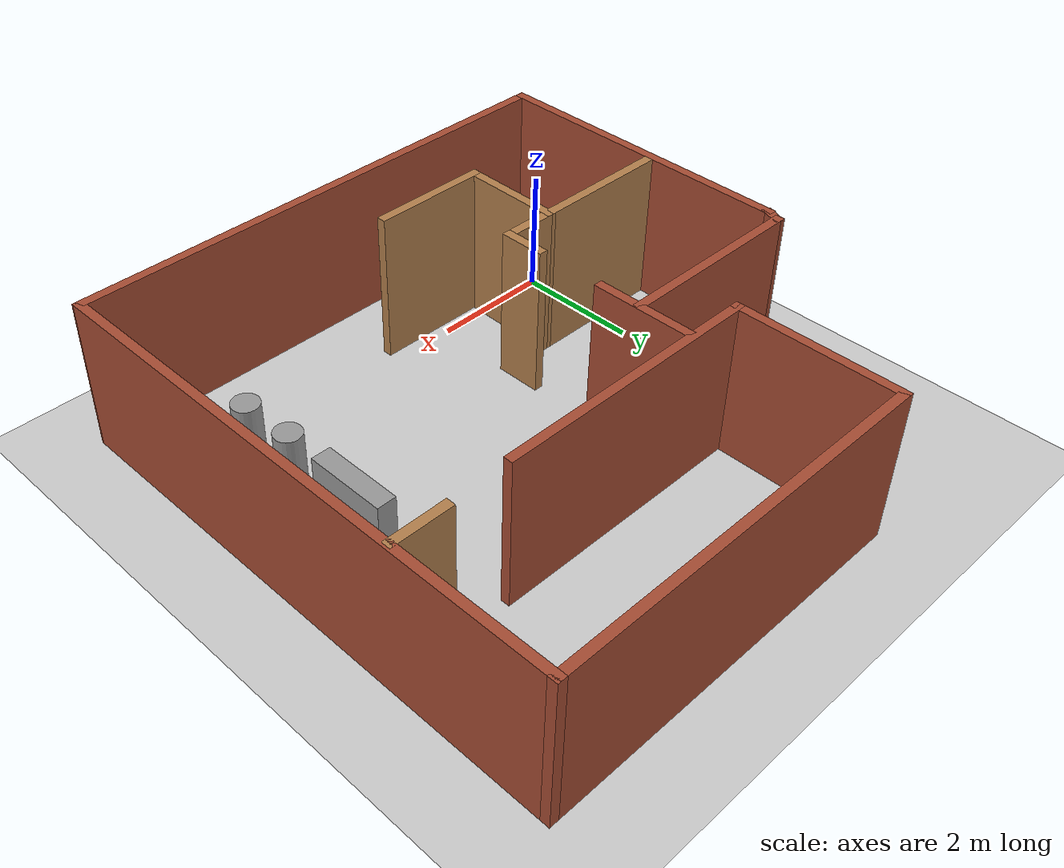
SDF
<sdf version="1.6">
 <world name="default">
  <light name="sun" type="directional">
   <pose>0 0 10 0 -0 0</pose>
   <diffuse>0.8 0.8 0.8 1</diffuse>
   <specular>0.2 0.2 0.2 1</specular>
   <attenuation>
    <range>1000</range>
    <constant>0.9</constant>
    <linear>0.01</linear>
    <quadratic>0.001</quadratic>
   </attenuation>
   <direction>-0.5 0.1 -0.9</direction>
  </light>
  <model name="ground_plane">
   <static>1</static>
   <link name="link">
    <collision name="collision">
     <geometry><plane><normal>0 0 1</normal><size>100 100</size></plane></geometry>
     <surface>
      <contact><collide_bitmask>65535</collide_bitmask></contact>
      <friction><ode><mu>100</mu><mu2>50</mu2></ode></friction>
     </surface>
    </collision>
    <visual name="visual">
     <cast_shadows>0</cast_shadows>
     <geometry><plane><normal>0 0 1</normal><size>100 100</size></plane></geometry>
     <material>
      <script><uri>file://media/materials/scripts/gazebo.material</uri><name>Gazebo/Grey</name></script>
     </material>
    </visual>
   </link>
  </model>
  <gravity>0 0 -9.8</gravity>
  <magnetic_field>6e-06 2.3e-05 -4.2e-05</magnetic_field>
  <atmosphere type="adiabatic"/>
  <physics name="default_physics" default="0" type="ode">
   <max_step_size>0.001</max_step_size>
   <real_time_factor>1</real_time_factor>
   <real_time_update_rate>1000</real_time_update_rate>
  </physics>
  <scene><ambient>0.4 0.4 0.4 1</ambient><background>0.7 0.7 0.7 1</background><shadows>1</shadows></scene>
  <audio><device>default</device></audio>
  <spherical_coordinates>
   <surface_model>EARTH_WGS84</surface_model>
   <latitude_deg>0</latitude_deg>
   <longitude_deg>0</longitude_deg>
   <elevation>0</elevation>
   <heading_deg>0</heading_deg>
  </spherical_coordinates>
  <model name="Room2">
   <pose>3.09595 2.93246 0 0 -0 0</pose>
   <link name="Wall_11">
    <collision name="Wall_11_Collision">
     <geometry><box><size>1 0.15 2.5</size></box></geometry>
     <pose>0 0 1.25 0 -0 0</pose>
    </collision>
    <visual name="Wall_11_Visual">
     <pose>0 0 1.25 0 -0 0</pose>
     <geometry><box><size>1 0.15 2.5</size></box></geometry>
     <material>
      <script><uri>file://media/materials/scripts/gazebo.material</uri><name>Gazebo/Wood</name></script>
      <ambient>1 1 1 1</ambient>
     </material>
     <meta><layer>0</layer></meta>
    </visual>
    <pose>3.84484 1.86666 0 0 -0 0</pose>
   </link>
   <link name="Wall_13">
    <collision name="Wall_13_Collision">
     <geometry><box><size>1.75 0.15 2.5</size></box></geometry>
     <pose>0 0 1.25 0 -0 0</pose>
    </collision>
    <visual name="Wall_13_Visual">
     <pose>0 0 1.25 0 -0 0</pose>
     <geometry><box><size>1.75 0.15 2.5</size></box></geometry>
     <material>
      <script><uri>file://media/materials/scripts/gazebo.material</uri><name>Gazebo/Bricks</name></script>
      <ambient>1 1 1 1</ambient>
     </material>
     <meta><layer>0</layer></meta>
    </visual>
    <pose>-1.09016 1.01666 0 0 -0 -1.5708</pose>
   </link>
   <link name="Wall_15">
    <collision name="Wall_15_Collision">
     <geometry><box><size>0.97 0.15 2.5</size></box></geometry>
     <pose>0 0 1.25 0 -0 0</pose>
    </collision>
    <visual name="Wall_15_Visual">
     <pose>0 0 1.25 0 -0 0</pose>
     <geometry><box><size>0.97 0.15 2.5</size></box></geometry>
     <material>
      <script><uri>file://media/materials/scripts/gazebo.material</uri><name>Gazebo/Wood</name></script>
      <ambient>1 1 1 1</ambient>
     </material>
     <meta><layer>0</layer></meta>
    </visual>
    <pose>-1.51016 -1.57334 0 0 -0 0</pose>
   </link>
   <link name="Wall_18">
    <collision name="Wall_18_Collision">
     <geometry><box><size>0.75 0.15 2.5</size></box></geometry>
     <pose>0 0 1.25 0 -0 0</pose>
    </collision>
    <visual name="Wall_18_Visual">
     <pose>0 0 1.25 0 -0 0</pose>
     <geometry><box><size>0.75 0.15 2.5</size></box></geometry>
     <material>
      <script><uri>file://media/materials/scripts/gazebo.material</uri><name>Gazebo/Wood</name></script>
      <ambient>1 1 1 1</ambient>
     </material>
     <meta><layer>0</layer></meta>
    </visual>
    <pose>-1.10016 -1.27334 0 0 -0 1.5708</pose>
   </link>
   <link name="Wall_20">
    <collision name="Wall_20_Collision">
     <geometry><box><size>3.25 0.15 2.5</size></box></geometry>
     <pose>0 0 1.25 0 -0 0</pose>
    </collision>
    <visual name="Wall_20_Visual">
     <pose>0 0 1.25 0 -0 0</pose>
     <geometry><box><size>3.25 0.15 2.5</size></box></geometry>
     <material>
      <script><uri>file://media/materials/scripts/gazebo.material</uri><name>Gazebo/Bricks</name></script>
      <ambient>1 1 1 1</ambient>
     </material>
     <meta><layer>0</layer></meta>
    </visual>
    <pose>-2.66016 0.896658 0 0 -0 3.14159</pose>
   </link>
   <link name="Wall_23">
    <collision name="Wall_23_Collision">
     <geometry><box><size>5.25 0.15 2.5</size></box></geometry>
     <pose>0 0 1.25 0 -0 0</pose>
    </collision>
    <visual name="Wall_23_Visual">
     <pose>0 0 1.25 0 -0 0</pose>
     <geometry><box><size>5.25 0.15 2.5</size></box></geometry>
     <material>
      <script><uri>file://media/materials/scripts/gazebo.material</uri><name>Gazebo/Bricks</name></script>
      <ambient>1 1 1 1</ambient>
     </material>
     <meta><layer>0</layer></meta>
    </visual>
    <pose>-4.28878 -1.87006 0 0 -0 1.5708</pose>
   </link>
   <link name="Wall_25">
    <collision name="Wall_25_Collision">
     <geometry><box><size>0.380533 0.15 2.5</size></box></geometry>
     <pose>0 0 1.25 0 -0 0</pose>
    </collision>
    <visual name="Wall_25_Visual">
     <pose>0 0 1.25 0 -0 0</pose>
     <geometry><box><size>0.380533 0.15 2.5</size></box></geometry>
     <material>
      <script><uri>file://media/materials/scripts/gazebo.material</uri><name>Gazebo/Bricks</name></script>
      <ambient>1 1 1 1</ambient>
     </material>
     <meta><layer>0</layer></meta>
    </visual>
    <pose>-4.24947 0.788301 0 0 -0 1.22278</pose>
   </link>
   <link name="Wall_27">
    <collision name="Wall_27_Collision">
     <geometry><box><size>1.75012 0.15 2.5</size></box></geometry>
     <pose>0 0 1.25 0 -0 0</pose>
    </collision>
    <visual name="Wall_27_Visual">
     <pose>0 0 1.25 0 -0 0</pose>
     <geometry><box><size>1.75012 0.15 2.5</size></box></geometry>
     <material>
      <script><uri>file://media/materials/scripts/gazebo.material</uri><name>Gazebo/Wood</name></script>
      <ambient>1 1 1 1</ambient>
     </material>
     <meta><layer>0</layer></meta>
    </visual>
    <pose>-1.93016 -2.37334 0 0 -0 1.5583</pose>
   </link>
   <link name="Wall_28">
    <collision name="Wall_28_Collision">
     <geometry><box><size>2.5 0.15 2.5</size></box></geometry>
     <pose>0 0 1.25 0 -0 0</pose>
    </collision>
    <visual name="Wall_28_Visual">
     <pose>0 0 1.25 0 -0 0</pose>
     <geometry><box><size>2.5 0.15 2.5</size></box></geometry>
     <material>
      <script><uri>file://media/materials/scripts/gazebo.material</uri><name>Gazebo/Wood</name></script>
      <ambient>1 1 1 1</ambient>
     </material>
     <meta><layer>0</layer></meta>
    </visual>
    <pose>-3.09516 -1.57334 0 0 -0 3.14159</pose>
   </link>
   <link name="Wall_3">
    <collision name="Wall_3_Collision">
     <geometry><box><size>2 0.15 2.5</size></box></geometry>
     <pose>0 0 1.25 0 -0 0</pose>
    </collision>
    <visual name="Wall_3_Visual">
     <pose>0 0 1.25 0 -0 0</pose>
     <geometry><box><size>2 0.15 2.5</size></box></geometry>
     <material>
      <script><uri>file://media/materials/scripts/gazebo.material</uri><name>Gazebo/Wood</name></script>
      <ambient>1 1 1 1</ambient>
     </material>
     <meta><layer>0</layer></meta>
    </visual>
    <pose>-1.01516 -3.17334 0 0 -0 0</pose>
   </link>
   <link name="Wall_5">
    <collision name="Wall_5_Collision">
     <geometry><box><size>8.74862 0.15 2.5</size></box></geometry>
     <pose>0 0 1.25 0 -0 0</pose>
    </collision>
    <visual name="Wall_5_Visual">
     <pose>0 0 1.25 0 -0 0</pose>
     <geometry><box><size>8.74862 0.15 2.5</size></box></geometry>
     <material>
      <script><uri>file://media/materials/scripts/gazebo.material</uri><name>Gazebo/Bricks</name></script>
      <ambient>1 1 1 1</ambient>
     </material>
     <meta><layer>0</layer></meta>
    </visual>
    <pose>0.010527 -4.42499 0 0 -0 0.000382</pose>
   </link>
   <link name="Wall_6">
    <collision name="Wall_6_Collision">
     <geometry><box><size>9 0.15 2.5</size></box></geometry>
     <pose>0 0 1.25 0 -0 0</pose>
    </collision>
    <visual name="Wall_6_Visual">
     <pose>0 0 1.25 0 -0 0</pose>
     <geometry><box><size>9 0.15 2.5</size></box></geometry>
     <material>
      <script><uri>file://media/materials/scripts/gazebo.material</uri><name>Gazebo/Bricks</name></script>
      <ambient>1 1 1 1</ambient>
     </material>
     <meta><layer>0</layer></meta>
    </visual>
    <pose>4.30984 0.001658 0 0 -0 1.5708</pose>
   </link>
   <link name="Wall_7">
    <collision name="Wall_7_Collision">
     <geometry><box><size>6.5 0.15 2.5</size></box></geometry>
     <pose>0 0 1.25 0 -0 0</pose>
    </collision>
    <visual name="Wall_7_Visual">
     <pose>0 0 1.25 0 -0 0</pose>
     <geometry><box><size>6.5 0.15 2.5</size></box></geometry>
     <material>
      <script><uri>file://media/materials/scripts/gazebo.material</uri><name>Gazebo/Bricks</name></script>
      <ambient>1 1 1 1</ambient>
     </material>
     <meta><layer>0</layer></meta>
    </visual>
    <pose>1.13484 4.42666 0 0 -0 3.14159</pose>
   </link>
   <link name="Wall_8">
    <collision name="Wall_8_Collision">
     <geometry><box><size>2.75 0.15 2.5</size></box></geometry>
     <pose>0 0 1.25 0 -0 0</pose>
    </collision>
    <visual name="Wall_8_Visual">
     <pose>0 0 1.25 0 -0 0</pose>
     <geometry><box><size>2.75 0.15 2.5</size></box></geometry>
     <material>
      <script><uri>file://media/materials/scripts/gazebo.material</uri><name>Gazebo/Bricks</name></script>
      <ambient>1 1 1 1</ambient>
     </material>
     <meta><layer>0</layer></meta>
    </visual>
    <pose>-2.04016 3.12666 0 0 -0 -1.5708</pose>
   </link>
   <link name="Wall_9">
    <collision name="Wall_9_Collision">
     <geometry><box><size>4.5 0.15 2.5</size></box></geometry>
     <pose>0 0 1.25 0 -0 0</pose>
    </collision>
    <visual name="Wall_9_Visual">
     <pose>0 0 1.25 0 -0 0</pose>
     <geometry><box><size>4.5 0.15 2.5</size></box></geometry>
     <material>
      <script><uri>file://media/materials/scripts/gazebo.material</uri><name>Gazebo/Bricks</name></script>
      <ambient>1 1 1 1</ambient>
     </material>
     <meta><layer>0</layer></meta>
    </visual>
    <pose>0.134836 1.82666 0 0 -0 0</pose>
   </link>
   <static>1</static>
  </model>
  <model name="unit_box">
   <pose>5.99646 2.42609 0.5 -0 -0 -2e-06</pose>
   <link name="link">
    <inertial>
     <mass>1</mass>
     <inertia>
      <ixx>0.166667</ixx>
      <ixy>0</ixy>
      <ixz>0</ixz>
      <iyy>0.166667</iyy>
      <iyz>0</iyz>
      <izz>0.166667</izz>
     </inertia>
    </inertial>
    <collision name="collision"><geometry><box><size>0.32622 1.34831 1</size></box></geometry></collision>
    <visual name="visual">
     <geometry><box><size>0.32622 1.34831 1</size></box></geometry>
     <material>
      <script><name>Gazebo/Grey</name><uri>file://media/materials/scripts/gazebo.material</uri></script>
     </material>
    </visual>
   </link>
  </model>
  <model name="unit_cylinder">
   <pose>6.05122 1.11201 0.499992 1e-06 -0 2e-06</pose>
   <link name="link">
    <inertial>
     <mass>1</mass>
     <inertia><ixx>0.145833</ixx><ixy>0</ixy><ixz>0</ixz><iyy>0.145833</iyy><iyz>0</iyz><izz>0.125</izz></inertia>
    </inertial>
    <collision name="collision">
     <geometry><cylinder><radius>0.223045</radius><length>1</length></cylinder></geometry>
    </collision>
    <visual name="visual">
     <geometry><cylinder><radius>0.223045</radius><length>1</length></cylinder></geometry>
     <material>
      <script><name>Gazebo/Grey</name><uri>file://media/materials/scripts/gazebo.material</uri></script>
     </material>
    </visual>
   </link>
  </model>
  <model name="unit_box_0">
   <pose>4.40565 6.9204 0.499998 -7e-06 -0 2.9e-05</pose>
   <link name="link">
    <inertial>
     <mass>1</mass>
     <inertia>
      <ixx>0.166667</ixx>
      <ixy>0</ixy>
      <ixz>0</ixz>
      <iyy>0.166667</iyy>
      <iyz>0</iyz>
      <izz>0.166667</izz>
     </inertia>
    </inertial>
    <collision name="collision"><geometry><box><size>3.05004 0.685113 1</size></box></geometry></collision>
    <visual name="visual">
     <geometry><box><size>3.05004 0.685113 1</size></box></geometry>
     <material>
      <script><name>Gazebo/Grey</name><uri>file://media/materials/scripts/gazebo.material</uri></script>
     </material>
    </visual>
   </link>
  </model>
  <model name="unit_cylinder_clone">
   <pose>6.08543 0.199225 0.499991 -1e-06 0 2e-06</pose>
   <link name="link">
    <inertial>
     <mass>1</mass>
     <inertia><ixx>0.145833</ixx><ixy>0</ixy><ixz>0</ixz><iyy>0.145833</iyy><iyz>0</iyz><izz>0.125</izz></inertia>
    </inertial>
    <collision name="collision">
     <geometry><cylinder><radius>0.223045</radius><length>1</length></cylinder></geometry>
    </collision>
    <visual name="visual">
     <geometry><cylinder><radius>0.223045</radius><length>1</length></cylinder></geometry>
     <material>
      <script><name>Gazebo/Grey</name><uri>file://media/materials/scripts/gazebo.material</uri></script>
     </material>
    </visual>
   </link>
  </model>
 </world>
</sdf>
